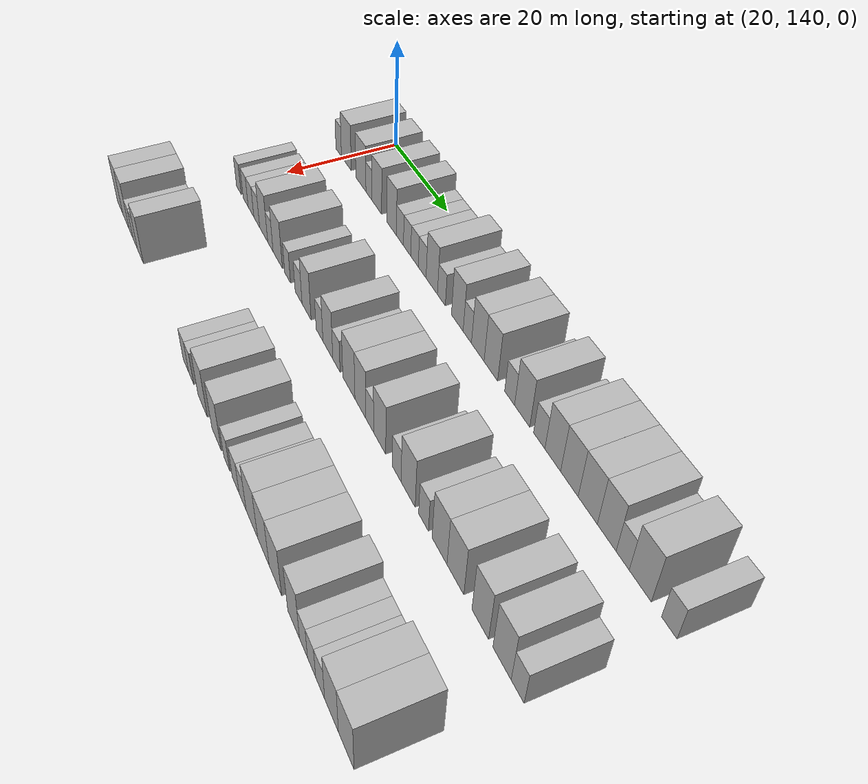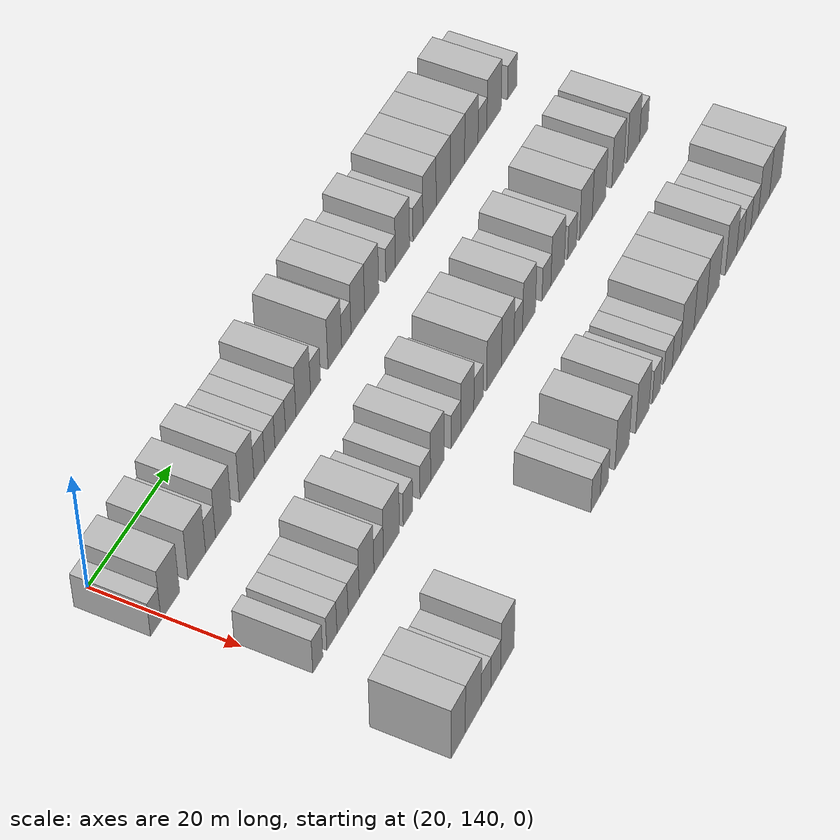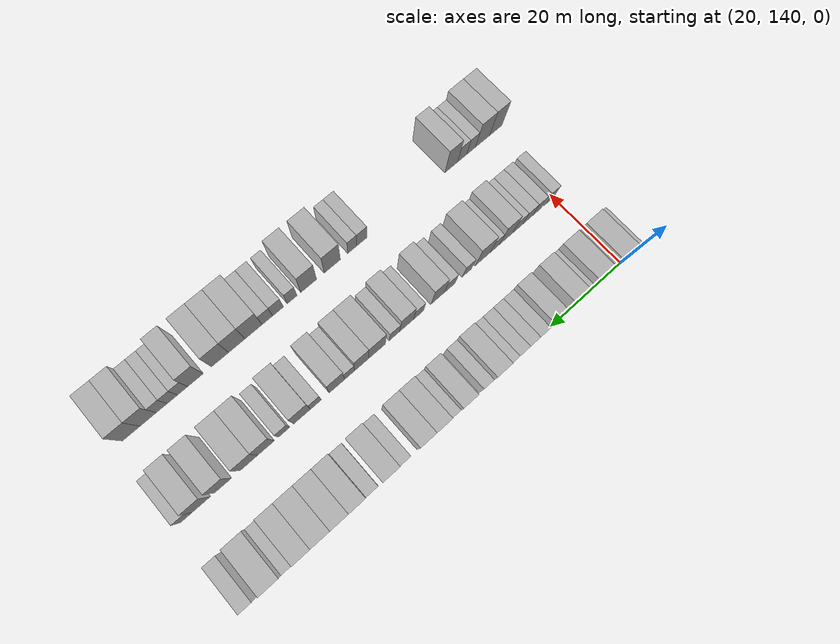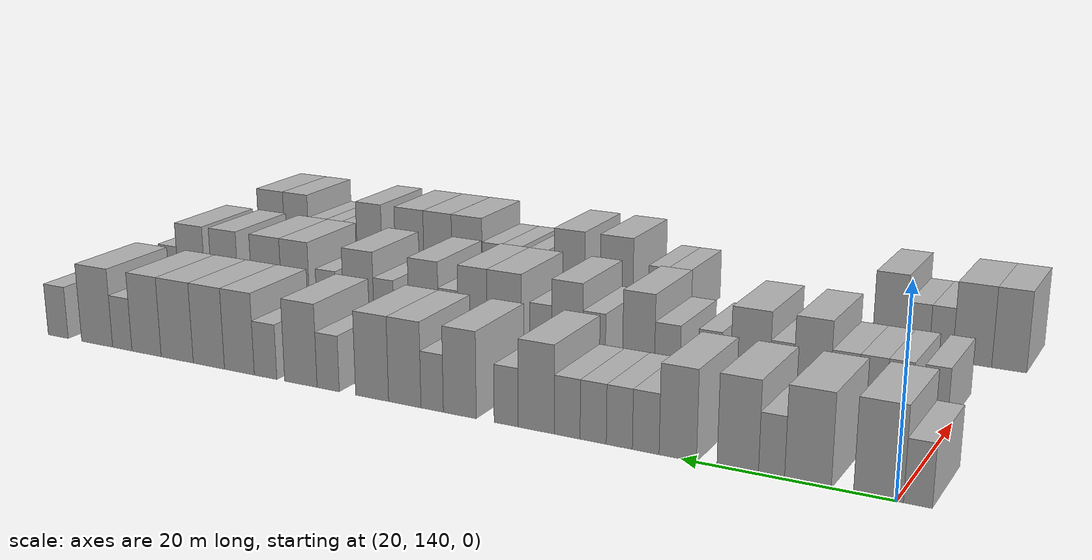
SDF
<sdf version="1.6">
 <world name="default">
  <model name="building_95">
   <static>1</static>
   <pose>25.0000 138.1551 0 0.000000 0.000000 0.000000</pose>
   <link name="link">
    <pose>0 0 3.00 0 0 0</pose>
    <collision name="collision"><geometry><box><size>10.0000 2.5012 6.0000</size></box></geometry></collision>
    <visual name="visual">
     <cast_shadows>0</cast_shadows>
     <geometry><box><size>10.0000 2.5012 6.0000</size></box></geometry>
     <material>
      <script>
       <uri>model://HANNAS_wall/materials/scripts</uri>
       <uri>model://HANNAS_wall/materials/textures</uri>
       <name>vrc/HANNAS_wall</name>
      </script>
     </material>
    </visual>
   </link>
  </model>
  <model name="building_96">
   <static>1</static>
   <pose>25.0000 141.6103 0 0.000000 0.000000 0.000000</pose>
   <link name="link">
    <pose>0 0 4.50 0 0 0</pose>
    <collision name="collision"><geometry><box><size>10.0000 4.4091 9.0000</size></box></geometry></collision>
    <visual name="visual">
     <cast_shadows>0</cast_shadows>
     <geometry><box><size>10.0000 4.4091 9.0000</size></box></geometry>
     <material>
      <script>
       <uri>model://HANNAS_wall/materials/scripts</uri>
       <uri>model://HANNAS_wall/materials/textures</uri>
       <name>vrc/HANNAS_wall</name>
      </script>
     </material>
    </visual>
   </link>
  </model>
  <model name="building_97">
   <static>1</static>
   <pose>25.0000 147.9632 0 0.000000 0.000000 0.000000</pose>
   <link name="link">
    <pose>0 0 4.50 0 0 0</pose>
    <collision name="collision"><geometry><box><size>10.0000 4.2968 9.0000</size></box></geometry></collision>
    <visual name="visual">
     <cast_shadows>0</cast_shadows>
     <geometry><box><size>10.0000 4.2968 9.0000</size></box></geometry>
     <material>
      <script>
       <uri>model://HANNAS_wall/materials/scripts</uri>
       <uri>model://HANNAS_wall/materials/textures</uri>
       <name>vrc/HANNAS_wall</name>
      </script>
     </material>
    </visual>
   </link>
  </model>
  <model name="building_98">
   <static>1</static>
   <pose>25.0000 151.3379 0 0.000000 0.000000 0.000000</pose>
   <link name="link">
    <pose>0 0 3.00 0 0 0</pose>
    <collision name="collision"><geometry><box><size>10.0000 2.4527 6.0000</size></box></geometry></collision>
    <visual name="visual">
     <cast_shadows>0</cast_shadows>
     <geometry><box><size>10.0000 2.4527 6.0000</size></box></geometry>
     <material>
      <script>
       <uri>model://HANNAS_wall/materials/scripts</uri>
       <uri>model://HANNAS_wall/materials/textures</uri>
       <name>vrc/HANNAS_wall</name>
      </script>
     </material>
    </visual>
   </link>
  </model>
  <model name="building_99">
   <static>1</static>
   <pose>25.0000 154.5467 0 0.000000 0.000000 0.000000</pose>
   <link name="link">
    <pose>0 0 4.50 0 0 0</pose>
    <collision name="collision"><geometry><box><size>10.0000 3.9648 9.0000</size></box></geometry></collision>
    <visual name="visual">
     <cast_shadows>0</cast_shadows>
     <geometry><box><size>10.0000 3.9648 9.0000</size></box></geometry>
     <material>
      <script>
       <uri>model://HANNAS_wall/materials/scripts</uri>
       <uri>model://HANNAS_wall/materials/textures</uri>
       <name>vrc/HANNAS_wall</name>
      </script>
     </material>
    </visual>
   </link>
  </model>
  <model name="building_100">
   <static>1</static>
   <pose>25.0000 160.3868 0 0.000000 0.000000 0.000000</pose>
   <link name="link">
    <pose>0 0 4.50 0 0 0</pose>
    <collision name="collision"><geometry><box><size>10.0000 3.7155 9.0000</size></box></geometry></collision>
    <visual name="visual">
     <cast_shadows>0</cast_shadows>
     <geometry><box><size>10.0000 3.7155 9.0000</size></box></geometry>
     <material>
      <script>
       <uri>model://HANNAS_wall/materials/scripts</uri>
       <uri>model://HANNAS_wall/materials/textures</uri>
       <name>vrc/HANNAS_wall</name>
      </script>
     </material>
    </visual>
   </link>
  </model>
  <model name="building_101">
   <static>1</static>
   <pose>25.0000 163.5942 0 0.000000 0.000000 0.000000</pose>
   <link name="link">
    <pose>0 0 3.00 0 0 0</pose>
    <collision name="collision"><geometry><box><size>10.0000 2.6993 6.0000</size></box></geometry></collision>
    <visual name="visual">
     <cast_shadows>0</cast_shadows>
     <geometry><box><size>10.0000 2.6993 6.0000</size></box></geometry>
     <material>
      <script>
       <uri>model://HANNAS_wall/materials/scripts</uri>
       <uri>model://HANNAS_wall/materials/textures</uri>
       <name>vrc/HANNAS_wall</name>
      </script>
     </material>
    </visual>
   </link>
  </model>
  <model name="building_102">
   <static>1</static>
   <pose>25.0000 166.2858 0 0.000000 0.000000 0.000000</pose>
   <link name="link">
    <pose>0 0 3.00 0 0 0</pose>
    <collision name="collision"><geometry><box><size>10.0000 2.6839 6.0000</size></box></geometry></collision>
    <visual name="visual">
     <cast_shadows>0</cast_shadows>
     <geometry><box><size>10.0000 2.6839 6.0000</size></box></geometry>
     <material>
      <script>
       <uri>model://HANNAS_wall/materials/scripts</uri>
       <uri>model://HANNAS_wall/materials/textures</uri>
       <name>vrc/HANNAS_wall</name>
      </script>
     </material>
    </visual>
   </link>
  </model>
  <model name="building_103">
   <static>1</static>
   <pose>25.0000 168.9951 0 0.000000 0.000000 0.000000</pose>
   <link name="link">
    <pose>0 0 3.00 0 0 0</pose>
    <collision name="collision"><geometry><box><size>10.0000 2.7346 6.0000</size></box></geometry></collision>
    <visual name="visual">
     <cast_shadows>0</cast_shadows>
     <geometry><box><size>10.0000 2.7346 6.0000</size></box></geometry>
     <material>
      <script>
       <uri>model://HANNAS_wall/materials/scripts</uri>
       <uri>model://HANNAS_wall/materials/textures</uri>
       <name>vrc/HANNAS_wall</name>
      </script>
     </material>
    </visual>
   </link>
  </model>
  <model name="building_104">
   <static>1</static>
   <pose>25.0000 171.7353 0 0.000000 0.000000 0.000000</pose>
   <link name="link">
    <pose>0 0 3.00 0 0 0</pose>
    <collision name="collision"><geometry><box><size>10.0000 2.7460 6.0000</size></box></geometry></collision>
    <visual name="visual">
     <cast_shadows>0</cast_shadows>
     <geometry><box><size>10.0000 2.7460 6.0000</size></box></geometry>
     <material>
      <script>
       <uri>model://HANNAS_wall/materials/scripts</uri>
       <uri>model://HANNAS_wall/materials/textures</uri>
       <name>vrc/HANNAS_wall</name>
      </script>
     </material>
    </visual>
   </link>
  </model>
  <model name="building_105">
   <static>1</static>
   <pose>25.0000 175.0574 0 0.000000 0.000000 0.000000</pose>
   <link name="link">
    <pose>0 0 4.50 0 0 0</pose>
    <collision name="collision"><geometry><box><size>10.0000 3.8982 9.0000</size></box></geometry></collision>
    <visual name="visual">
     <cast_shadows>0</cast_shadows>
     <geometry><box><size>10.0000 3.8982 9.0000</size></box></geometry>
     <material>
      <script>
       <uri>model://HANNAS_wall/materials/scripts</uri>
       <uri>model://HANNAS_wall/materials/textures</uri>
       <name>vrc/HANNAS_wall</name>
      </script>
     </material>
    </visual>
   </link>
  </model>
  <model name="building_106">
   <static>1</static>
   <pose>25.0000 178.3266 0 0.000000 0.000000 0.000000</pose>
   <link name="link">
    <pose>0 0 3.00 0 0 0</pose>
    <collision name="collision"><geometry><box><size>10.0000 2.6401 6.0000</size></box></geometry></collision>
    <visual name="visual">
     <cast_shadows>0</cast_shadows>
     <geometry><box><size>10.0000 2.6401 6.0000</size></box></geometry>
     <material>
      <script>
       <uri>model://HANNAS_wall/materials/scripts</uri>
       <uri>model://HANNAS_wall/materials/textures</uri>
       <name>vrc/HANNAS_wall</name>
      </script>
     </material>
    </visual>
   </link>
  </model>
  <model name="building_107">
   <static>1</static>
   <pose>25.0000 183.5162 0 0.000000 0.000000 0.000000</pose>
   <link name="link">
    <pose>0 0 4.50 0 0 0</pose>
    <collision name="collision"><geometry><box><size>10.0000 3.7391 9.0000</size></box></geometry></collision>
    <visual name="visual">
     <cast_shadows>0</cast_shadows>
     <geometry><box><size>10.0000 3.7391 9.0000</size></box></geometry>
     <material>
      <script>
       <uri>model://HANNAS_wall/materials/scripts</uri>
       <uri>model://HANNAS_wall/materials/textures</uri>
       <name>vrc/HANNAS_wall</name>
      </script>
     </material>
    </visual>
   </link>
  </model>
  <model name="building_108">
   <static>1</static>
   <pose>25.0000 186.6810 0 0.000000 0.000000 0.000000</pose>
   <link name="link">
    <pose>0 0 3.00 0 0 0</pose>
    <collision name="collision"><geometry><box><size>10.0000 2.5905 6.0000</size></box></geometry></collision>
    <visual name="visual">
     <cast_shadows>0</cast_shadows>
     <geometry><box><size>10.0000 2.5905 6.0000</size></box></geometry>
     <material>
      <script>
       <uri>model://HANNAS_wall/materials/scripts</uri>
       <uri>model://HANNAS_wall/materials/textures</uri>
       <name>vrc/HANNAS_wall</name>
      </script>
     </material>
    </visual>
   </link>
  </model>
  <model name="building_109">
   <static>1</static>
   <pose>25.0000 189.8808 0 0.000000 0.000000 0.000000</pose>
   <link name="link">
    <pose>0 0 4.50 0 0 0</pose>
    <collision name="collision"><geometry><box><size>10.0000 3.8091 9.0000</size></box></geometry></collision>
    <visual name="visual">
     <cast_shadows>0</cast_shadows>
     <geometry><box><size>10.0000 3.8091 9.0000</size></box></geometry>
     <material>
      <script>
       <uri>model://HANNAS_wall/materials/scripts</uri>
       <uri>model://HANNAS_wall/materials/textures</uri>
       <name>vrc/HANNAS_wall</name>
      </script>
     </material>
    </visual>
   </link>
  </model>
  <model name="building_110">
   <static>1</static>
   <pose>25.0000 193.7672 0 0.000000 0.000000 0.000000</pose>
   <link name="link">
    <pose>0 0 4.50 0 0 0</pose>
    <collision name="collision"><geometry><box><size>10.0000 3.9637 9.0000</size></box></geometry></collision>
    <visual name="visual">
     <cast_shadows>0</cast_shadows>
     <geometry><box><size>10.0000 3.9637 9.0000</size></box></geometry>
     <material>
      <script>
       <uri>model://HANNAS_wall/materials/scripts</uri>
       <uri>model://HANNAS_wall/materials/textures</uri>
       <name>vrc/HANNAS_wall</name>
      </script>
     </material>
    </visual>
   </link>
  </model>
  <model name="building_111">
   <static>1</static>
   <pose>25.0000 199.1219 0 0.000000 0.000000 0.000000</pose>
   <link name="link">
    <pose>0 0 3.00 0 0 0</pose>
    <collision name="collision"><geometry><box><size>10.0000 2.7456 6.0000</size></box></geometry></collision>
    <visual name="visual">
     <cast_shadows>0</cast_shadows>
     <geometry><box><size>10.0000 2.7456 6.0000</size></box></geometry>
     <material>
      <script>
       <uri>model://HANNAS_wall/materials/scripts</uri>
       <uri>model://HANNAS_wall/materials/textures</uri>
       <name>vrc/HANNAS_wall</name>
      </script>
     </material>
    </visual>
   </link>
  </model>
  <model name="building_112">
   <static>1</static>
   <pose>25.0000 202.5400 0 0.000000 0.000000 0.000000</pose>
   <link name="link">
    <pose>0 0 4.50 0 0 0</pose>
    <collision name="collision"><geometry><box><size>10.0000 4.0905 9.0000</size></box></geometry></collision>
    <visual name="visual">
     <cast_shadows>0</cast_shadows>
     <geometry><box><size>10.0000 4.0905 9.0000</size></box></geometry>
     <material>
      <script>
       <uri>model://HANNAS_wall/materials/scripts</uri>
       <uri>model://HANNAS_wall/materials/textures</uri>
       <name>vrc/HANNAS_wall</name>
      </script>
     </material>
    </visual>
   </link>
  </model>
  <model name="building_113">
   <static>1</static>
   <pose>25.0000 207.0403 0 0.000000 0.000000 0.000000</pose>
   <link name="link">
    <pose>0 0 3.00 0 0 0</pose>
    <collision name="collision"><geometry><box><size>10.0000 2.9102 6.0000</size></box></geometry></collision>
    <visual name="visual">
     <cast_shadows>0</cast_shadows>
     <geometry><box><size>10.0000 2.9102 6.0000</size></box></geometry>
     <material>
      <script>
       <uri>model://HANNAS_wall/materials/scripts</uri>
       <uri>model://HANNAS_wall/materials/textures</uri>
       <name>vrc/HANNAS_wall</name>
      </script>
     </material>
    </visual>
   </link>
  </model>
  <model name="building_114">
   <static>1</static>
   <pose>25.0000 210.4586 0 0.000000 0.000000 0.000000</pose>
   <link name="link">
    <pose>0 0 4.50 0 0 0</pose>
    <collision name="collision"><geometry><box><size>10.0000 3.9264 9.0000</size></box></geometry></collision>
    <visual name="visual">
     <cast_shadows>0</cast_shadows>
     <geometry><box><size>10.0000 3.9264 9.0000</size></box></geometry>
     <material>
      <script>
       <uri>model://HANNAS_wall/materials/scripts</uri>
       <uri>model://HANNAS_wall/materials/textures</uri>
       <name>vrc/HANNAS_wall</name>
      </script>
     </material>
    </visual>
   </link>
  </model>
  <model name="building_115">
   <static>1</static>
   <pose>25.0000 214.5192 0 0.000000 0.000000 0.000000</pose>
   <link name="link">
    <pose>0 0 4.50 0 0 0</pose>
    <collision name="collision"><geometry><box><size>10.0000 4.1948 9.0000</size></box></geometry></collision>
    <visual name="visual">
     <cast_shadows>0</cast_shadows>
     <geometry><box><size>10.0000 4.1948 9.0000</size></box></geometry>
     <material>
      <script>
       <uri>model://HANNAS_wall/materials/scripts</uri>
       <uri>model://HANNAS_wall/materials/textures</uri>
       <name>vrc/HANNAS_wall</name>
      </script>
     </material>
    </visual>
   </link>
  </model>
  <model name="building_116">
   <static>1</static>
   <pose>25.0000 218.8204 0 0.000000 0.000000 0.000000</pose>
   <link name="link">
    <pose>0 0 4.50 0 0 0</pose>
    <collision name="collision"><geometry><box><size>10.0000 4.4075 9.0000</size></box></geometry></collision>
    <visual name="visual">
     <cast_shadows>0</cast_shadows>
     <geometry><box><size>10.0000 4.4075 9.0000</size></box></geometry>
     <material>
      <script>
       <uri>model://HANNAS_wall/materials/scripts</uri>
       <uri>model://HANNAS_wall/materials/textures</uri>
       <name>vrc/HANNAS_wall</name>
      </script>
     </material>
    </visual>
   </link>
  </model>
  <model name="building_117">
   <static>1</static>
   <pose>25.0000 223.0762 0 0.000000 0.000000 0.000000</pose>
   <link name="link">
    <pose>0 0 4.50 0 0 0</pose>
    <collision name="collision"><geometry><box><size>10.0000 4.1042 9.0000</size></box></geometry></collision>
    <visual name="visual">
     <cast_shadows>0</cast_shadows>
     <geometry><box><size>10.0000 4.1042 9.0000</size></box></geometry>
     <material>
      <script>
       <uri>model://HANNAS_wall/materials/scripts</uri>
       <uri>model://HANNAS_wall/materials/textures</uri>
       <name>vrc/HANNAS_wall</name>
      </script>
     </material>
    </visual>
   </link>
  </model>
  <model name="building_118">
   <static>1</static>
   <pose>25.0000 226.5099 0 0.000000 0.000000 0.000000</pose>
   <link name="link">
    <pose>0 0 3.00 0 0 0</pose>
    <collision name="collision"><geometry><box><size>10.0000 2.7631 6.0000</size></box></geometry></collision>
    <visual name="visual">
     <cast_shadows>0</cast_shadows>
     <geometry><box><size>10.0000 2.7631 6.0000</size></box></geometry>
     <material>
      <script>
       <uri>model://HANNAS_wall/materials/scripts</uri>
       <uri>model://HANNAS_wall/materials/textures</uri>
       <name>vrc/HANNAS_wall</name>
      </script>
     </material>
    </visual>
   </link>
  </model>
  <model name="building_119">
   <static>1</static>
   <pose>25.0000 230.1404 0 0.000000 0.000000 0.000000</pose>
   <link name="link">
    <pose>0 0 4.50 0 0 0</pose>
    <collision name="collision"><geometry><box><size>10.0000 4.4980 9.0000</size></box></geometry></collision>
    <visual name="visual">
     <cast_shadows>0</cast_shadows>
     <geometry><box><size>10.0000 4.4980 9.0000</size></box></geometry>
     <material>
      <script>
       <uri>model://HANNAS_wall/materials/scripts</uri>
       <uri>model://HANNAS_wall/materials/textures</uri>
       <name>vrc/HANNAS_wall</name>
      </script>
     </material>
    </visual>
   </link>
  </model>
  <model name="building_120">
   <static>1</static>
   <pose>25.0000 235.8736 0 0.000000 0.000000 0.000000</pose>
   <link name="link">
    <pose>0 0 3.00 0 0 0</pose>
    <collision name="collision"><geometry><box><size>10.0000 2.9684 6.0000</size></box></geometry></collision>
    <visual name="visual">
     <cast_shadows>0</cast_shadows>
     <geometry><box><size>10.0000 2.9684 6.0000</size></box></geometry>
     <material>
      <script>
       <uri>model://HANNAS_wall/materials/scripts</uri>
       <uri>model://HANNAS_wall/materials/textures</uri>
       <name>vrc/HANNAS_wall</name>
      </script>
     </material>
    </visual>
   </link>
  </model>
  <model name="building_217">
   <static>1</static>
   <pose>44.0000 141.4587 0 0.000000 0.000000 0.000000</pose>
   <link name="link">
    <pose>0 0 3.00 0 0 0</pose>
    <collision name="collision"><geometry><box><size>10.0000 2.4894 6.0000</size></box></geometry></collision>
    <visual name="visual">
     <cast_shadows>0</cast_shadows>
     <geometry><box><size>10.0000 2.4894 6.0000</size></box></geometry>
     <material>
      <script>
       <uri>model://HANNAS_wall/materials/scripts</uri>
       <uri>model://HANNAS_wall/materials/textures</uri>
       <name>vrc/HANNAS_wall</name>
      </script>
     </material>
    </visual>
   </link>
  </model>
  <model name="building_218">
   <static>1</static>
   <pose>44.0000 144.9880 0 0.000000 0.000000 0.000000</pose>
   <link name="link">
    <pose>0 0 3.00 0 0 0</pose>
    <collision name="collision"><geometry><box><size>10.0000 2.5692 6.0000</size></box></geometry></collision>
    <visual name="visual">
     <cast_shadows>0</cast_shadows>
     <geometry><box><size>10.0000 2.5692 6.0000</size></box></geometry>
     <material>
      <script>
       <uri>model://HANNAS_wall/materials/scripts</uri>
       <uri>model://HANNAS_wall/materials/textures</uri>
       <name>vrc/HANNAS_wall</name>
      </script>
     </material>
    </visual>
   </link>
  </model>
  <model name="building_219">
   <static>1</static>
   <pose>44.0000 147.6829 0 0.000000 0.000000 0.000000</pose>
   <link name="link">
    <pose>0 0 3.00 0 0 0</pose>
    <collision name="collision"><geometry><box><size>10.0000 2.8207 6.0000</size></box></geometry></collision>
    <visual name="visual">
     <cast_shadows>0</cast_shadows>
     <geometry><box><size>10.0000 2.8207 6.0000</size></box></geometry>
     <material>
      <script>
       <uri>model://HANNAS_wall/materials/scripts</uri>
       <uri>model://HANNAS_wall/materials/textures</uri>
       <name>vrc/HANNAS_wall</name>
      </script>
     </material>
    </visual>
   </link>
  </model>
  <model name="building_220">
   <static>1</static>
   <pose>44.0000 150.5314 0 0.000000 0.000000 0.000000</pose>
   <link name="link">
    <pose>0 0 3.00 0 0 0</pose>
    <collision name="collision"><geometry><box><size>10.0000 2.8763 6.0000</size></box></geometry></collision>
    <visual name="visual">
     <cast_shadows>0</cast_shadows>
     <geometry><box><size>10.0000 2.8763 6.0000</size></box></geometry>
     <material>
      <script>
       <uri>model://HANNAS_wall/materials/scripts</uri>
       <uri>model://HANNAS_wall/materials/textures</uri>
       <name>vrc/HANNAS_wall</name>
      </script>
     </material>
    </visual>
   </link>
  </model>
  <model name="building_221">
   <static>1</static>
   <pose>44.0000 153.8852 0 0.000000 0.000000 0.000000</pose>
   <link name="link">
    <pose>0 0 4.50 0 0 0</pose>
    <collision name="collision"><geometry><box><size>10.0000 3.8313 9.0000</size></box></geometry></collision>
    <visual name="visual">
     <cast_shadows>0</cast_shadows>
     <geometry><box><size>10.0000 3.8313 9.0000</size></box></geometry>
     <material>
      <script>
       <uri>model://HANNAS_wall/materials/scripts</uri>
       <uri>model://HANNAS_wall/materials/textures</uri>
       <name>vrc/HANNAS_wall</name>
      </script>
     </material>
    </visual>
   </link>
  </model>
  <model name="building_222">
   <static>1</static>
   <pose>44.0000 157.0491 0 0.000000 0.000000 0.000000</pose>
   <link name="link">
    <pose>0 0 3.00 0 0 0</pose>
    <collision name="collision"><geometry><box><size>10.0000 2.4966 6.0000</size></box></geometry></collision>
    <visual name="visual">
     <cast_shadows>0</cast_shadows>
     <geometry><box><size>10.0000 2.4966 6.0000</size></box></geometry>
     <material>
      <script>
       <uri>model://HANNAS_wall/materials/scripts</uri>
       <uri>model://HANNAS_wall/materials/textures</uri>
       <name>vrc/HANNAS_wall</name>
      </script>
     </material>
    </visual>
   </link>
  </model>
  <model name="building_223">
   <static>1</static>
   <pose>44.0000 160.4127 0 0.000000 0.000000 0.000000</pose>
   <link name="link">
    <pose>0 0 4.50 0 0 0</pose>
    <collision name="collision"><geometry><box><size>10.0000 4.2305 9.0000</size></box></geometry></collision>
    <visual name="visual">
     <cast_shadows>0</cast_shadows>
     <geometry><box><size>10.0000 4.2305 9.0000</size></box></geometry>
     <material>
      <script>
       <uri>model://HANNAS_wall/materials/scripts</uri>
       <uri>model://HANNAS_wall/materials/textures</uri>
       <name>vrc/HANNAS_wall</name>
      </script>
     </material>
    </visual>
   </link>
  </model>
  <model name="building_224">
   <static>1</static>
   <pose>44.0000 164.7971 0 0.000000 0.000000 0.000000</pose>
   <link name="link">
    <pose>0 0 3.00 0 0 0</pose>
    <collision name="collision"><geometry><box><size>10.0000 2.5384 6.0000</size></box></geometry></collision>
    <visual name="visual">
     <cast_shadows>0</cast_shadows>
     <geometry><box><size>10.0000 2.5384 6.0000</size></box></geometry>
     <material>
      <script>
       <uri>model://HANNAS_wall/materials/scripts</uri>
       <uri>model://HANNAS_wall/materials/textures</uri>
       <name>vrc/HANNAS_wall</name>
      </script>
     </material>
    </visual>
   </link>
  </model>
  <model name="building_225">
   <static>1</static>
   <pose>44.0000 169.5160 0 0.000000 0.000000 0.000000</pose>
   <link name="link">
    <pose>0 0 3.00 0 0 0</pose>
    <collision name="collision"><geometry><box><size>10.0000 2.8994 6.0000</size></box></geometry></collision>
    <visual name="visual">
     <cast_shadows>0</cast_shadows>
     <geometry><box><size>10.0000 2.8994 6.0000</size></box></geometry>
     <material>
      <script>
       <uri>model://HANNAS_wall/materials/scripts</uri>
       <uri>model://HANNAS_wall/materials/textures</uri>
       <name>vrc/HANNAS_wall</name>
      </script>
     </material>
    </visual>
   </link>
  </model>
  <model name="building_226">
   <static>1</static>
   <pose>44.0000 172.8050 0 0.000000 0.000000 0.000000</pose>
   <link name="link">
    <pose>0 0 4.50 0 0 0</pose>
    <collision name="collision"><geometry><box><size>10.0000 3.6786 9.0000</size></box></geometry></collision>
    <visual name="visual">
     <cast_shadows>0</cast_shadows>
     <geometry><box><size>10.0000 3.6786 9.0000</size></box></geometry>
     <material>
      <script>
       <uri>model://HANNAS_wall/materials/scripts</uri>
       <uri>model://HANNAS_wall/materials/textures</uri>
       <name>vrc/HANNAS_wall</name>
      </script>
     </material>
    </visual>
   </link>
  </model>
  <model name="building_227">
   <static>1</static>
   <pose>44.0000 177.9898 0 0.000000 0.000000 0.000000</pose>
   <link name="link">
    <pose>0 0 3.00 0 0 0</pose>
    <collision name="collision"><geometry><box><size>10.0000 2.6912 6.0000</size></box></geometry></collision>
    <visual name="visual">
     <cast_shadows>0</cast_shadows>
     <geometry><box><size>10.0000 2.6912 6.0000</size></box></geometry>
     <material>
      <script>
       <uri>model://HANNAS_wall/materials/scripts</uri>
       <uri>model://HANNAS_wall/materials/textures</uri>
       <name>vrc/HANNAS_wall</name>
      </script>
     </material>
    </visual>
   </link>
  </model>
  <model name="building_228">
   <static>1</static>
   <pose>44.0000 181.1989 0 0.000000 0.000000 0.000000</pose>
   <link name="link">
    <pose>0 0 4.50 0 0 0</pose>
    <collision name="collision"><geometry><box><size>10.0000 3.7268 9.0000</size></box></geometry></collision>
    <visual name="visual">
     <cast_shadows>0</cast_shadows>
     <geometry><box><size>10.0000 3.7268 9.0000</size></box></geometry>
     <material>
      <script>
       <uri>model://HANNAS_wall/materials/scripts</uri>
       <uri>model://HANNAS_wall/materials/textures</uri>
       <name>vrc/HANNAS_wall</name>
      </script>
     </material>
    </visual>
   </link>
  </model>
  <model name="building_229">
   <static>1</static>
   <pose>44.0000 184.4032 0 0.000000 0.000000 0.000000</pose>
   <link name="link">
    <pose>0 0 3.00 0 0 0</pose>
    <collision name="collision"><geometry><box><size>10.0000 2.6819 6.0000</size></box></geometry></collision>
    <visual name="visual">
     <cast_shadows>0</cast_shadows>
     <geometry><box><size>10.0000 2.6819 6.0000</size></box></geometry>
     <material>
      <script>
       <uri>model://HANNAS_wall/materials/scripts</uri>
       <uri>model://HANNAS_wall/materials/textures</uri>
       <name>vrc/HANNAS_wall</name>
      </script>
     </material>
    </visual>
   </link>
  </model>
  <model name="building_230">
   <static>1</static>
   <pose>44.0000 188.8837 0 0.000000 0.000000 0.000000</pose>
   <link name="link">
    <pose>0 0 4.50 0 0 0</pose>
    <collision name="collision"><geometry><box><size>10.0000 4.2791 9.0000</size></box></geometry></collision>
    <visual name="visual">
     <cast_shadows>0</cast_shadows>
     <geometry><box><size>10.0000 4.2791 9.0000</size></box></geometry>
     <material>
      <script>
       <uri>model://HANNAS_wall/materials/scripts</uri>
       <uri>model://HANNAS_wall/materials/textures</uri>
       <name>vrc/HANNAS_wall</name>
      </script>
     </material>
    </visual>
   </link>
  </model>
  <model name="building_231">
   <static>1</static>
   <pose>44.0000 192.8779 0 0.000000 0.000000 0.000000</pose>
   <link name="link">
    <pose>0 0 4.50 0 0 0</pose>
    <collision name="collision"><geometry><box><size>10.0000 3.7094 9.0000</size></box></geometry></collision>
    <visual name="visual">
     <cast_shadows>0</cast_shadows>
     <geometry><box><size>10.0000 3.7094 9.0000</size></box></geometry>
     <material>
      <script>
       <uri>model://HANNAS_wall/materials/scripts</uri>
       <uri>model://HANNAS_wall/materials/textures</uri>
       <name>vrc/HANNAS_wall</name>
      </script>
     </material>
    </visual>
   </link>
  </model>
  <model name="building_232">
   <static>1</static>
   <pose>44.0000 196.0126 0 0.000000 0.000000 0.000000</pose>
   <link name="link">
    <pose>0 0 3.00 0 0 0</pose>
    <collision name="collision"><geometry><box><size>10.0000 2.5599 6.0000</size></box></geometry></collision>
    <visual name="visual">
     <cast_shadows>0</cast_shadows>
     <geometry><box><size>10.0000 2.5599 6.0000</size></box></geometry>
     <material>
      <script>
       <uri>model://HANNAS_wall/materials/scripts</uri>
       <uri>model://HANNAS_wall/materials/textures</uri>
       <name>vrc/HANNAS_wall</name>
      </script>
     </material>
    </visual>
   </link>
  </model>
  <model name="building_233">
   <static>1</static>
   <pose>44.0000 199.2383 0 0.000000 0.000000 0.000000</pose>
   <link name="link">
    <pose>0 0 4.50 0 0 0</pose>
    <collision name="collision"><geometry><box><size>10.0000 3.8914 9.0000</size></box></geometry></collision>
    <visual name="visual">
     <cast_shadows>0</cast_shadows>
     <geometry><box><size>10.0000 3.8914 9.0000</size></box></geometry>
     <material>
      <script>
       <uri>model://HANNAS_wall/materials/scripts</uri>
       <uri>model://HANNAS_wall/materials/textures</uri>
       <name>vrc/HANNAS_wall</name>
      </script>
     </material>
    </visual>
   </link>
  </model>
  <model name="building_234">
   <static>1</static>
   <pose>44.0000 204.5342 0 0.000000 0.000000 0.000000</pose>
   <link name="link">
    <pose>0 0 3.00 0 0 0</pose>
    <collision name="collision"><geometry><box><size>10.0000 2.7005 6.0000</size></box></geometry></collision>
    <visual name="visual">
     <cast_shadows>0</cast_shadows>
     <geometry><box><size>10.0000 2.7005 6.0000</size></box></geometry>
     <material>
      <script>
       <uri>model://HANNAS_wall/materials/scripts</uri>
       <uri>model://HANNAS_wall/materials/textures</uri>
       <name>vrc/HANNAS_wall</name>
      </script>
     </material>
    </visual>
   </link>
  </model>
  <model name="building_235">
   <static>1</static>
   <pose>44.0000 207.9712 0 0.000000 0.000000 0.000000</pose>
   <link name="link">
    <pose>0 0 4.50 0 0 0</pose>
    <collision name="collision"><geometry><box><size>10.0000 4.1734 9.0000</size></box></geometry></collision>
    <visual name="visual">
     <cast_shadows>0</cast_shadows>
     <geometry><box><size>10.0000 4.1734 9.0000</size></box></geometry>
     <material>
      <script>
       <uri>model://HANNAS_wall/materials/scripts</uri>
       <uri>model://HANNAS_wall/materials/textures</uri>
       <name>vrc/HANNAS_wall</name>
      </script>
     </material>
    </visual>
   </link>
  </model>
  <model name="building_236">
   <static>1</static>
   <pose>44.0000 212.4346 0 0.000000 0.000000 0.000000</pose>
   <link name="link">
    <pose>0 0 3.00 0 0 0</pose>
    <collision name="collision"><geometry><box><size>10.0000 2.7534 6.0000</size></box></geometry></collision>
    <visual name="visual">
     <cast_shadows>0</cast_shadows>
     <geometry><box><size>10.0000 2.7534 6.0000</size></box></geometry>
     <material>
      <script>
       <uri>model://HANNAS_wall/materials/scripts</uri>
       <uri>model://HANNAS_wall/materials/textures</uri>
       <name>vrc/HANNAS_wall</name>
      </script>
     </material>
    </visual>
   </link>
  </model>
  <model name="building_237">
   <static>1</static>
   <pose>44.0000 216.8128 0 0.000000 0.000000 0.000000</pose>
   <link name="link">
    <pose>0 0 4.50 0 0 0</pose>
    <collision name="collision"><geometry><box><size>10.0000 4.0031 9.0000</size></box></geometry></collision>
    <visual name="visual">
     <cast_shadows>0</cast_shadows>
     <geometry><box><size>10.0000 4.0031 9.0000</size></box></geometry>
     <material>
      <script>
       <uri>model://HANNAS_wall/materials/scripts</uri>
       <uri>model://HANNAS_wall/materials/textures</uri>
       <name>vrc/HANNAS_wall</name>
      </script>
     </material>
    </visual>
   </link>
  </model>
  <model name="building_238">
   <static>1</static>
   <pose>44.0000 220.9783 0 0.000000 0.000000 0.000000</pose>
   <link name="link">
    <pose>0 0 4.50 0 0 0</pose>
    <collision name="collision"><geometry><box><size>10.0000 4.3278 9.0000</size></box></geometry></collision>
    <visual name="visual">
     <cast_shadows>0</cast_shadows>
     <geometry><box><size>10.0000 4.3278 9.0000</size></box></geometry>
     <material>
      <script>
       <uri>model://HANNAS_wall/materials/scripts</uri>
       <uri>model://HANNAS_wall/materials/textures</uri>
       <name>vrc/HANNAS_wall</name>
      </script>
     </material>
    </visual>
   </link>
  </model>
  <model name="building_239">
   <static>1</static>
   <pose>44.0000 227.1464 0 0.000000 0.000000 0.000000</pose>
   <link name="link">
    <pose>0 0 4.50 0 0 0</pose>
    <collision name="collision"><geometry><box><size>10.0000 4.0083 9.0000</size></box></geometry></collision>
    <visual name="visual">
     <cast_shadows>0</cast_shadows>
     <geometry><box><size>10.0000 4.0083 9.0000</size></box></geometry>
     <material>
      <script>
       <uri>model://HANNAS_wall/materials/scripts</uri>
       <uri>model://HANNAS_wall/materials/textures</uri>
       <name>vrc/HANNAS_wall</name>
      </script>
     </material>
    </visual>
   </link>
  </model>
  <model name="building_240">
   <static>1</static>
   <pose>44.0000 232.2191 0 0.000000 0.000000 0.000000</pose>
   <link name="link">
    <pose>0 0 4.50 0 0 0</pose>
    <collision name="collision"><geometry><box><size>10.0000 4.1370 9.0000</size></box></geometry></collision>
    <visual name="visual">
     <cast_shadows>0</cast_shadows>
     <geometry><box><size>10.0000 4.1370 9.0000</size></box></geometry>
     <material>
      <script>
       <uri>model://HANNAS_wall/materials/scripts</uri>
       <uri>model://HANNAS_wall/materials/textures</uri>
       <name>vrc/HANNAS_wall</name>
      </script>
     </material>
    </visual>
   </link>
  </model>
  <model name="building_241">
   <static>1</static>
   <pose>44.0000 235.7038 0 0.000000 0.000000 0.000000</pose>
   <link name="link">
    <pose>0 0 3.00 0 0 0</pose>
    <collision name="collision"><geometry><box><size>10.0000 2.8323 6.0000</size></box></geometry></collision>
    <visual name="visual">
     <cast_shadows>0</cast_shadows>
     <geometry><box><size>10.0000 2.8323 6.0000</size></box></geometry>
     <material>
      <script>
       <uri>model://HANNAS_wall/materials/scripts</uri>
       <uri>model://HANNAS_wall/materials/textures</uri>
       <name>vrc/HANNAS_wall</name>
      </script>
     </material>
    </visual>
   </link>
  </model>
  <model name="building_340">
   <static>1</static>
   <pose>63.0000 138.2331 0 0.000000 0.000000 0.000000</pose>
   <link name="link">
    <pose>0 0 4.50 0 0 0</pose>
    <collision name="collision"><geometry><box><size>10.0000 3.6607 9.0000</size></box></geometry></collision>
    <visual name="visual">
     <cast_shadows>0</cast_shadows>
     <geometry><box><size>10.0000 3.6607 9.0000</size></box></geometry>
     <material>
      <script>
       <uri>model://HANNAS_wall/materials/scripts</uri>
       <uri>model://HANNAS_wall/materials/textures</uri>
       <name>vrc/HANNAS_wall</name>
      </script>
     </material>
    </visual>
   </link>
  </model>
  <model name="building_341">
   <static>1</static>
   <pose>63.0000 142.1494 0 0.000000 0.000000 0.000000</pose>
   <link name="link">
    <pose>0 0 4.50 0 0 0</pose>
    <collision name="collision"><geometry><box><size>10.0000 4.1719 9.0000</size></box></geometry></collision>
    <visual name="visual">
     <cast_shadows>0</cast_shadows>
     <geometry><box><size>10.0000 4.1719 9.0000</size></box></geometry>
     <material>
      <script>
       <uri>model://HANNAS_wall/materials/scripts</uri>
       <uri>model://HANNAS_wall/materials/textures</uri>
       <name>vrc/HANNAS_wall</name>
      </script>
     </material>
    </visual>
   </link>
  </model>
  <model name="building_342">
   <static>1</static>
   <pose>63.0000 145.5070 0 0.000000 0.000000 0.000000</pose>
   <link name="link">
    <pose>0 0 3.00 0 0 0</pose>
    <collision name="collision"><geometry><box><size>10.0000 2.5432 6.0000</size></box></geometry></collision>
    <visual name="visual">
     <cast_shadows>0</cast_shadows>
     <geometry><box><size>10.0000 2.5432 6.0000</size></box></geometry>
     <material>
      <script>
       <uri>model://HANNAS_wall/materials/scripts</uri>
       <uri>model://HANNAS_wall/materials/textures</uri>
       <name>vrc/HANNAS_wall</name>
      </script>
     </material>
    </visual>
   </link>
  </model>
  <model name="building_343">
   <static>1</static>
   <pose>63.0000 148.1004 0 0.000000 0.000000 0.000000</pose>
   <link name="link">
    <pose>0 0 3.00 0 0 0</pose>
    <collision name="collision"><geometry><box><size>10.0000 2.6437 6.0000</size></box></geometry></collision>
    <visual name="visual">
     <cast_shadows>0</cast_shadows>
     <geometry><box><size>10.0000 2.6437 6.0000</size></box></geometry>
     <material>
      <script>
       <uri>model://HANNAS_wall/materials/scripts</uri>
       <uri>model://HANNAS_wall/materials/textures</uri>
       <name>vrc/HANNAS_wall</name>
      </script>
     </material>
    </visual>
   </link>
  </model>
  <model name="building_344">
   <static>1</static>
   <pose>63.0000 151.2583 0 0.000000 0.000000 0.000000</pose>
   <link name="link">
    <pose>0 0 4.50 0 0 0</pose>
    <collision name="collision"><geometry><box><size>10.0000 3.6720 9.0000</size></box></geometry></collision>
    <visual name="visual">
     <cast_shadows>0</cast_shadows>
     <geometry><box><size>10.0000 3.6720 9.0000</size></box></geometry>
     <material>
      <script>
       <uri>model://HANNAS_wall/materials/scripts</uri>
       <uri>model://HANNAS_wall/materials/textures</uri>
       <name>vrc/HANNAS_wall</name>
      </script>
     </material>
    </visual>
   </link>
  </model>
  <model name="building_345">
   <static>1</static>
   <pose>63.0000 176.1858 0 0.000000 0.000000 0.000000</pose>
   <link name="link">
    <pose>0 0 3.00 0 0 0</pose>
    <collision name="collision"><geometry><box><size>10.0000 2.7277 6.0000</size></box></geometry></collision>
    <visual name="visual">
     <cast_shadows>0</cast_shadows>
     <geometry><box><size>10.0000 2.7277 6.0000</size></box></geometry>
     <material>
      <script>
       <uri>model://HANNAS_wall/materials/scripts</uri>
       <uri>model://HANNAS_wall/materials/textures</uri>
       <name>vrc/HANNAS_wall</name>
      </script>
     </material>
    </visual>
   </link>
  </model>
  <model name="building_346">
   <static>1</static>
   <pose>63.0000 178.7648 0 0.000000 0.000000 0.000000</pose>
   <link name="link">
    <pose>0 0 3.00 0 0 0</pose>
    <collision name="collision"><geometry><box><size>10.0000 2.4304 6.0000</size></box></geometry></collision>
    <visual name="visual">
     <cast_shadows>0</cast_shadows>
     <geometry><box><size>10.0000 2.4304 6.0000</size></box></geometry>
     <material>
      <script>
       <uri>model://HANNAS_wall/materials/scripts</uri>
       <uri>model://HANNAS_wall/materials/textures</uri>
       <name>vrc/HANNAS_wall</name>
      </script>
     </material>
    </visual>
   </link>
  </model>
  <model name="building_347">
   <static>1</static>
   <pose>63.0000 184.1221 0 0.000000 0.000000 0.000000</pose>
   <link name="link">
    <pose>0 0 4.50 0 0 0</pose>
    <collision name="collision"><geometry><box><size>10.0000 4.2842 9.0000</size></box></geometry></collision>
    <visual name="visual">
     <cast_shadows>0</cast_shadows>
     <geometry><box><size>10.0000 4.2842 9.0000</size></box></geometry>
     <material>
      <script>
       <uri>model://HANNAS_wall/materials/scripts</uri>
       <uri>model://HANNAS_wall/materials/textures</uri>
       <name>vrc/HANNAS_wall</name>
      </script>
     </material>
    </visual>
   </link>
  </model>
  <model name="building_348">
   <static>1</static>
   <pose>63.0000 190.3252 0 0.000000 0.000000 0.000000</pose>
   <link name="link">
    <pose>0 0 4.50 0 0 0</pose>
    <collision name="collision"><geometry><box><size>10.0000 4.1219 9.0000</size></box></geometry></collision>
    <visual name="visual">
     <cast_shadows>0</cast_shadows>
     <geometry><box><size>10.0000 4.1219 9.0000</size></box></geometry>
     <material>
      <script>
       <uri>model://HANNAS_wall/materials/scripts</uri>
       <uri>model://HANNAS_wall/materials/textures</uri>
       <name>vrc/HANNAS_wall</name>
      </script>
     </material>
    </visual>
   </link>
  </model>
  <model name="building_349">
   <static>1</static>
   <pose>63.0000 194.6414 0 0.000000 0.000000 0.000000</pose>
   <link name="link">
    <pose>0 0 3.00 0 0 0</pose>
    <collision name="collision"><geometry><box><size>10.0000 2.5103 6.0000</size></box></geometry></collision>
    <visual name="visual">
     <cast_shadows>0</cast_shadows>
     <geometry><box><size>10.0000 2.5103 6.0000</size></box></geometry>
     <material>
      <script>
       <uri>model://HANNAS_wall/materials/scripts</uri>
       <uri>model://HANNAS_wall/materials/textures</uri>
       <name>vrc/HANNAS_wall</name>
      </script>
     </material>
    </visual>
   </link>
  </model>
  <model name="building_350">
   <static>1</static>
   <pose>63.0000 198.2835 0 0.000000 0.000000 0.000000</pose>
   <link name="link">
    <pose>0 0 3.00 0 0 0</pose>
    <collision name="collision"><geometry><box><size>10.0000 2.7740 6.0000</size></box></geometry></collision>
    <visual name="visual">
     <cast_shadows>0</cast_shadows>
     <geometry><box><size>10.0000 2.7740 6.0000</size></box></geometry>
     <material>
      <script>
       <uri>model://HANNAS_wall/materials/scripts</uri>
       <uri>model://HANNAS_wall/materials/textures</uri>
       <name>vrc/HANNAS_wall</name>
      </script>
     </material>
    </visual>
   </link>
  </model>
  <model name="building_351">
   <static>1</static>
   <pose>63.0000 201.0151 0 0.000000 0.000000 0.000000</pose>
   <link name="link">
    <pose>0 0 3.00 0 0 0</pose>
    <collision name="collision"><geometry><box><size>10.0000 2.6893 6.0000</size></box></geometry></collision>
    <visual name="visual">
     <cast_shadows>0</cast_shadows>
     <geometry><box><size>10.0000 2.6893 6.0000</size></box></geometry>
     <material>
      <script>
       <uri>model://HANNAS_wall/materials/scripts</uri>
       <uri>model://HANNAS_wall/materials/textures</uri>
       <name>vrc/HANNAS_wall</name>
      </script>
     </material>
    </visual>
   </link>
  </model>
  <model name="building_352">
   <static>1</static>
   <pose>63.0000 204.5275 0 0.000000 0.000000 0.000000</pose>
   <link name="link">
    <pose>0 0 4.50 0 0 0</pose>
    <collision name="collision"><geometry><box><size>10.0000 4.3355 9.0000</size></box></geometry></collision>
    <visual name="visual">
     <cast_shadows>0</cast_shadows>
     <geometry><box><size>10.0000 4.3355 9.0000</size></box></geometry>
     <material>
      <script>
       <uri>model://HANNAS_wall/materials/scripts</uri>
       <uri>model://HANNAS_wall/materials/textures</uri>
       <name>vrc/HANNAS_wall</name>
      </script>
     </material>
    </visual>
   </link>
  </model>
  <model name="building_353">
   <static>1</static>
   <pose>63.0000 208.7367 0 0.000000 0.000000 0.000000</pose>
   <link name="link">
    <pose>0 0 4.50 0 0 0</pose>
    <collision name="collision"><geometry><box><size>10.0000 4.0828 9.0000</size></box></geometry></collision>
    <visual name="visual">
     <cast_shadows>0</cast_shadows>
     <geometry><box><size>10.0000 4.0828 9.0000</size></box></geometry>
     <material>
      <script>
       <uri>model://HANNAS_wall/materials/scripts</uri>
       <uri>model://HANNAS_wall/materials/textures</uri>
       <name>vrc/HANNAS_wall</name>
      </script>
     </material>
    </visual>
   </link>
  </model>
  <model name="building_354">
   <static>1</static>
   <pose>63.0000 212.9050 0 0.000000 0.000000 0.000000</pose>
   <link name="link">
    <pose>0 0 4.50 0 0 0</pose>
    <collision name="collision"><geometry><box><size>10.0000 4.2538 9.0000</size></box></geometry></collision>
    <visual name="visual">
     <cast_shadows>0</cast_shadows>
     <geometry><box><size>10.0000 4.2538 9.0000</size></box></geometry>
     <material>
      <script>
       <uri>model://HANNAS_wall/materials/scripts</uri>
       <uri>model://HANNAS_wall/materials/textures</uri>
       <name>vrc/HANNAS_wall</name>
      </script>
     </material>
    </visual>
   </link>
  </model>
  <model name="building_355">
   <static>1</static>
   <pose>63.0000 218.9285 0 0.000000 0.000000 0.000000</pose>
   <link name="link">
    <pose>0 0 4.50 0 0 0</pose>
    <collision name="collision"><geometry><box><size>10.0000 3.7933 9.0000</size></box></geometry></collision>
    <visual name="visual">
     <cast_shadows>0</cast_shadows>
     <geometry><box><size>10.0000 3.7933 9.0000</size></box></geometry>
     <material>
      <script>
       <uri>model://HANNAS_wall/materials/scripts</uri>
       <uri>model://HANNAS_wall/materials/textures</uri>
       <name>vrc/HANNAS_wall</name>
      </script>
     </material>
    </visual>
   </link>
  </model>
  <model name="building_356">
   <static>1</static>
   <pose>63.0000 222.0570 0 0.000000 0.000000 0.000000</pose>
   <link name="link">
    <pose>0 0 3.00 0 0 0</pose>
    <collision name="collision"><geometry><box><size>10.0000 2.4637 6.0000</size></box></geometry></collision>
    <visual name="visual">
     <cast_shadows>0</cast_shadows>
     <geometry><box><size>10.0000 2.4637 6.0000</size></box></geometry>
     <material>
      <script>
       <uri>model://HANNAS_wall/materials/scripts</uri>
       <uri>model://HANNAS_wall/materials/textures</uri>
       <name>vrc/HANNAS_wall</name>
      </script>
     </material>
    </visual>
   </link>
  </model>
  <model name="building_357">
   <static>1</static>
   <pose>63.0000 224.5090 0 0.000000 0.000000 0.000000</pose>
   <link name="link">
    <pose>0 0 3.00 0 0 0</pose>
    <collision name="collision"><geometry><box><size>10.0000 2.4404 6.0000</size></box></geometry></collision>
    <visual name="visual">
     <cast_shadows>0</cast_shadows>
     <geometry><box><size>10.0000 2.4404 6.0000</size></box></geometry>
     <material>
      <script>
       <uri>model://HANNAS_wall/materials/scripts</uri>
       <uri>model://HANNAS_wall/materials/textures</uri>
       <name>vrc/HANNAS_wall</name>
      </script>
     </material>
    </visual>
   </link>
  </model>
  <model name="building_358">
   <static>1</static>
   <pose>63.0000 227.0380 0 0.000000 0.000000 0.000000</pose>
   <link name="link">
    <pose>0 0 3.00 0 0 0</pose>
    <collision name="collision"><geometry><box><size>10.0000 2.6174 6.0000</size></box></geometry></collision>
    <visual name="visual">
     <cast_shadows>0</cast_shadows>
     <geometry><box><size>10.0000 2.6174 6.0000</size></box></geometry>
     <material>
      <script>
       <uri>model://HANNAS_wall/materials/scripts</uri>
       <uri>model://HANNAS_wall/materials/textures</uri>
       <name>vrc/HANNAS_wall</name>
      </script>
     </material>
    </visual>
   </link>
  </model>
  <model name="building_359">
   <static>1</static>
   <pose>63.0000 230.2799 0 0.000000 0.000000 0.000000</pose>
   <link name="link">
    <pose>0 0 4.50 0 0 0</pose>
    <collision name="collision"><geometry><box><size>10.0000 3.8664 9.0000</size></box></geometry></collision>
    <visual name="visual">
     <cast_shadows>0</cast_shadows>
     <geometry><box><size>10.0000 3.8664 9.0000</size></box></geometry>
     <material>
      <script>
       <uri>model://HANNAS_wall/materials/scripts</uri>
       <uri>model://HANNAS_wall/materials/textures</uri>
       <name>vrc/HANNAS_wall</name>
      </script>
     </material>
    </visual>
   </link>
  </model>
  <model name="building_360">
   <static>1</static>
   <pose>63.0000 234.3037 0 0.000000 0.000000 0.000000</pose>
   <link name="link">
    <pose>0 0 4.50 0 0 0</pose>
    <collision name="collision"><geometry><box><size>10.0000 4.1813 9.0000</size></box></geometry></collision>
    <visual name="visual">
     <cast_shadows>0</cast_shadows>
     <geometry><box><size>10.0000 4.1813 9.0000</size></box></geometry>
     <material>
      <script>
       <uri>model://HANNAS_wall/materials/scripts</uri>
       <uri>model://HANNAS_wall/materials/textures</uri>
       <name>vrc/HANNAS_wall</name>
      </script>
     </material>
    </visual>
   </link>
  </model>
 </world>
</sdf>
